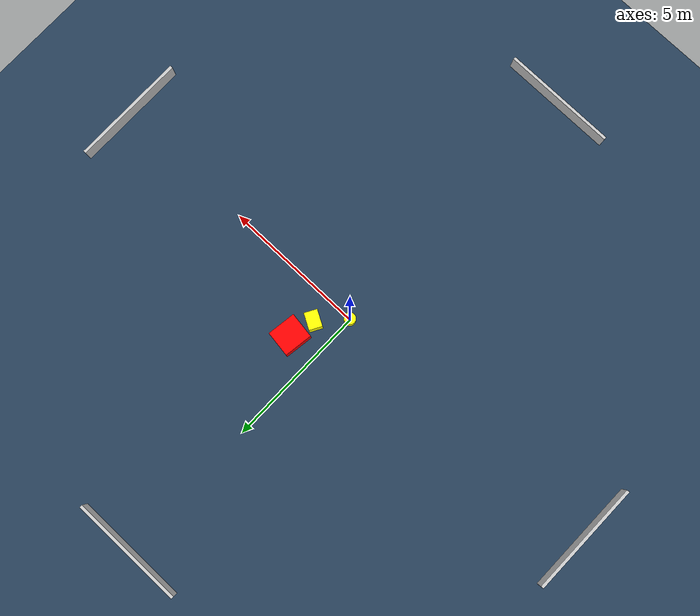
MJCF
<?xml version="1.0" ?>
<mujoco model="generated_environment">
  <option timestep="0.01" integrator="RK4" cone="elliptic"/>
  <default>
    <geom density="1"/>
  </default>
  <asset>
    <texture builtin="gradient" height="3072" name="skybox" rgb1="0.3 0.5 0.7" rgb2="0 0 0" type="skybox" width="512"/>
    <texture builtin="checker" height="300" name="groundplane" rgb1="0.2 0.3 0.4" rgb2="0.1 0.2 0.3" type="2d" width="300"/>
    <material name="groundplane" reflectance="0.2" texrepeat="5 5" texture="groundplane"/>
  </asset>
  <worldbody>
    <light dir="0 0 -1" directional="true" pos="0 0 1.5"/>
    <geom condim="3" friction="0.5 0.005 0.001" material="groundplane" name="floor" pos="0 0 0" size="0 0 0.05" type="plane"/>
    <body name="walls">
      <geom name="wall_1" condim="4" pos="-10.0 0.0 0.3" rgba="0.800000011920929 0.800000011920929 0.800000011920929 1.0" size="0.05 2.0 0.3" type="box"/>
      <geom name="wall_2" condim="4" pos="10.0 0.0 0.3" rgba="0.800000011920929 0.800000011920929 0.800000011920929 1.0" size="0.05 2.0 0.3" type="box"/>
      <geom name="wall_3" condim="4" pos="0.0 -10.0 0.3" rgba="0.800000011920929 0.800000011920929 0.800000011920929 1.0" size="2.0 0.05 0.3" type="box"/>
      <geom name="wall_4" condim="4" pos="0.0 10.0 0.3" rgba="0.800000011920929 0.800000011920929 0.800000011920929 1.0" size="2.0 0.05 0.3" type="box"/>
    </body>
    <body name="robot">
      <joint name="joint_x" type="slide" pos="0 0 0" axis="1 0 0"/>
      <joint name="joint_y" type="slide" pos="0 0 0" axis="0 1 0"/>
      <geom name="robot" type="cylinder" pos="0.0 0.0 0.2" size="0.2 0.2 0.0" mass="5.0" friction="1.0 0.005 0.0001" condim="4" rgba="1.0 1.0 0.0 1.0"/>
    </body>
    <body name="obstacle_1_movable">
      <geom name="obstacle_1_movable" condim="4" pos="0.8047706727025606 0.8530144116440032 0.3" euler="0 0 60.649049667211145" friction="0.0 0.005 0.001" rgba="1.0 1.0 0.0 1.0" size="0.226231514507921 0.29182643659293594 0.3" type="box" mass="0.1"/>
      <joint type="free"/>
    </body>
    <body name="obstacle_2_static">
      <geom name="obstacle_2_static" condim="4" pos="1.0104483220116114 1.708636617645784 0.3" euler="0 0 171.857682880324" friction="0.0 0.005 0.001" rgba="1.0 0.0 0.0 1.0" size="0.4448949231794793 0.4931940758794094 0.3" type="box"/>
    </body>
  </worldbody>
  <actuator>
    <motor name="actuator_x" joint="joint_x" gear="1" ctrlrange="-1 1"/>
    <motor name="actuator_y" joint="joint_y" gear="1" ctrlrange="-1 1"/>
  </actuator>
</mujoco>
